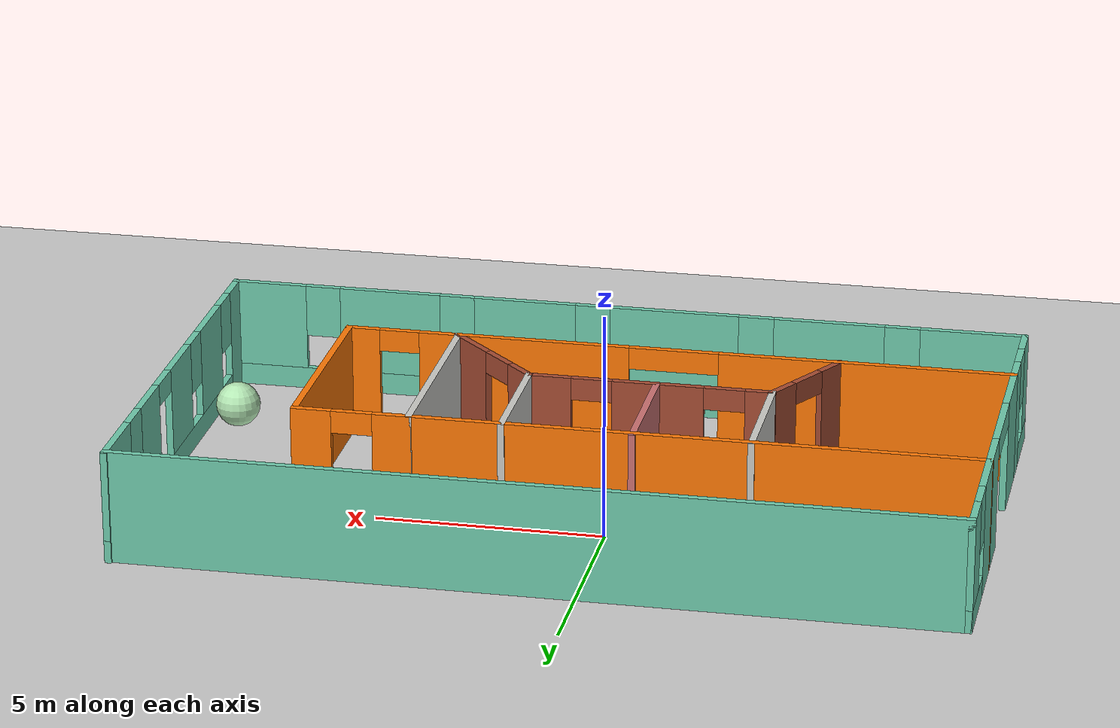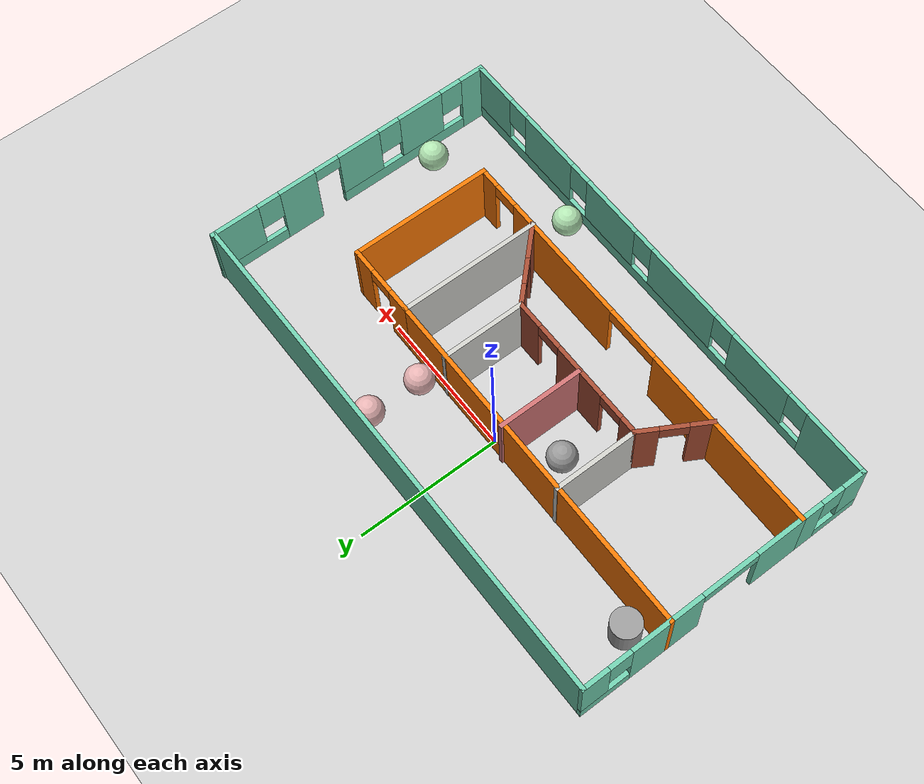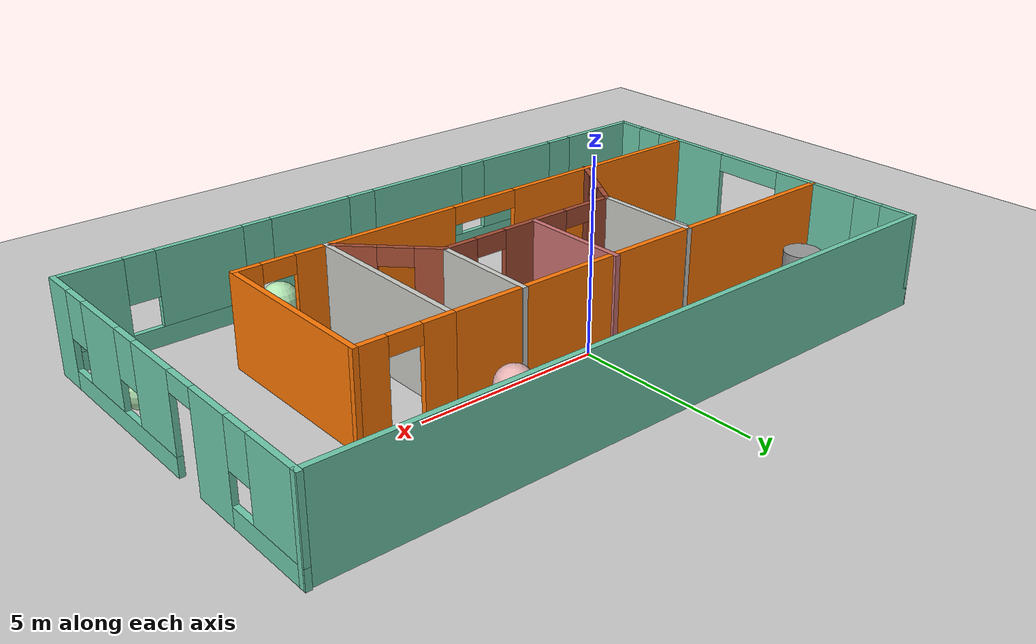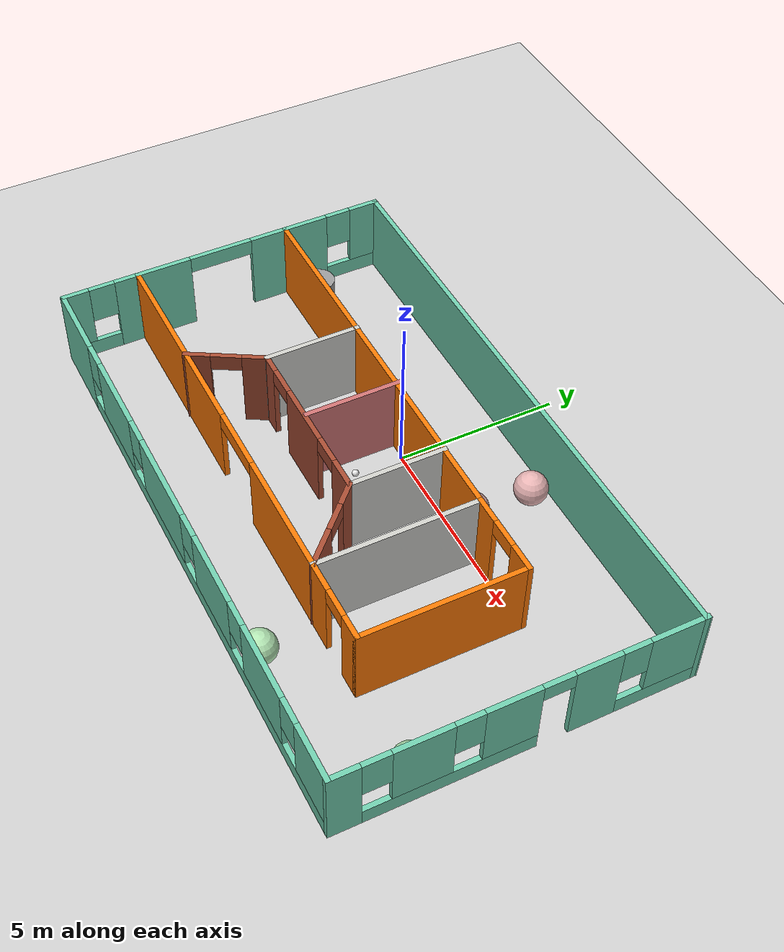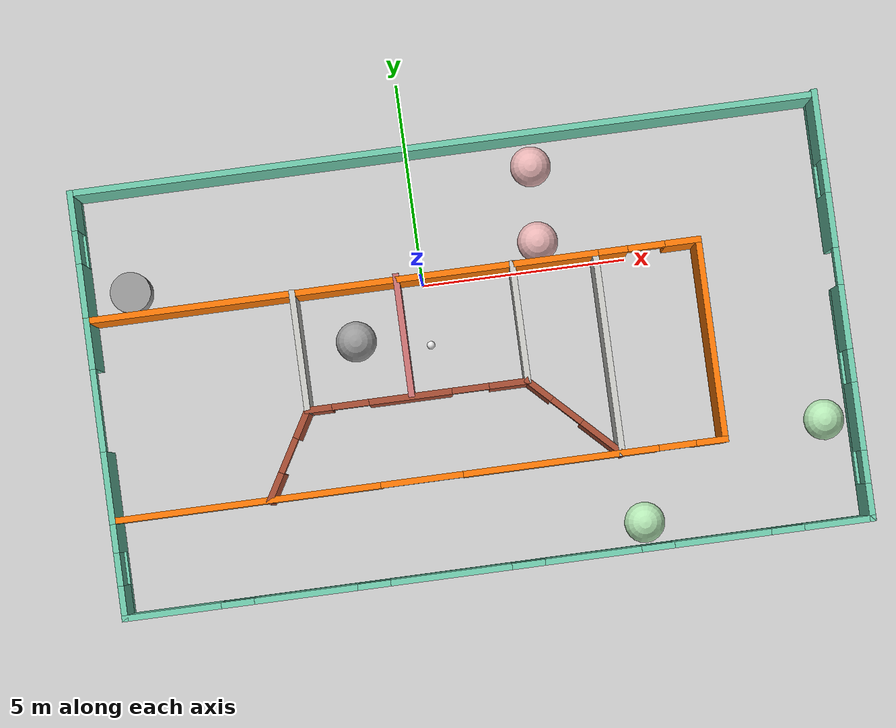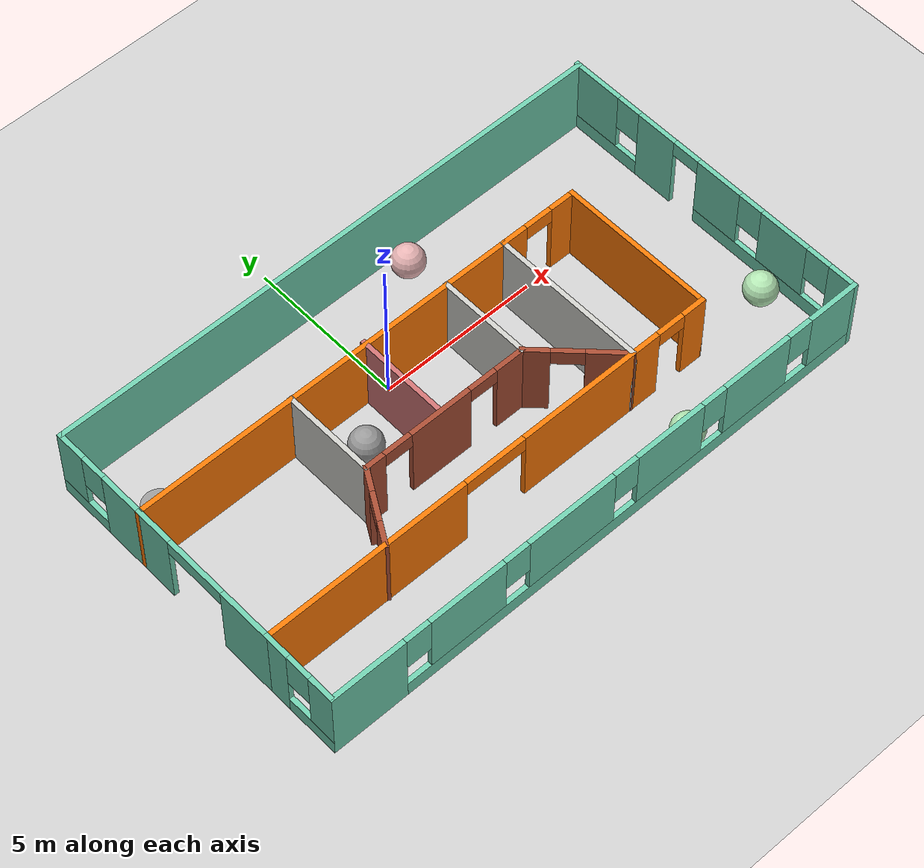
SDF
<sdf version="1.6">
 <world name="default">
  <model name="ground_plane">
   <static>1</static>
   <link name="link">
    <collision name="collision">
     <geometry><plane><normal>0 0 1</normal><size>100 100</size></plane></geometry>
     <surface>
      <contact><collide_bitmask>65535</collide_bitmask></contact>
      <friction><ode><mu>100</mu><mu2>50</mu2></ode></friction>
     </surface>
    </collision>
    <visual name="visual">
     <cast_shadows>0</cast_shadows>
     <geometry><plane><normal>0 0 1</normal><size>100 100</size></plane></geometry>
     <material>
      <script><uri>file://media/materials/scripts/gazebo.material</uri><name>Gazebo/Grey</name></script>
     </material>
    </visual>
   </link>
  </model>
  <model name="modelUdacityOffice">
   <pose>0.92 -1.915 0 0 -0 0</pose>
   <link name="Wall_0">
    <collision name="Wall_0_Collision">
     <geometry><box><size>12.5 0.15 2.5</size></box></geometry>
     <pose>0 0 1.25 0 -0 0</pose>
    </collision>
    <visual name="Wall_0_Visual">
     <pose>0 0 1.25 0 -0 0</pose>
     <geometry><box><size>12.5 0.15 2.5</size></box></geometry>
     <material>
      <script><uri>file://media/materials/scripts/gazebo.material</uri><name>Gazebo/Grey</name></script>
      <ambient>0.996078 0.47451 0.0196078 1</ambient>
     </material>
     <meta><layer>0</layer></meta>
    </visual>
    <pose>-2.875 2.025 0 0 -0 3.14159</pose>
   </link>
   <link name="Wall_1">
    <pose>-9.05 -0.4 0 0 -0 -1.5708</pose>
    <visual name="Wall_1_Visual_0">
     <pose>-1.87607 0 1.25 0 -0 0</pose>
     <geometry><box><size>1.24786 0.15 2.5</size></box></geometry>
     <material>
      <script><uri>file://media/materials/scripts/gazebo.material</uri><name>Gazebo/Grey</name></script>
      <ambient>0.435294 0.796078 0.67451 1</ambient>
     </material>
     <meta><layer>0</layer></meta>
    </visual>
    <collision name="Wall_1_Collision_0">
     <geometry><box><size>1.24786 0.15 2.5</size></box></geometry>
     <pose>-1.87607 0 1.25 0 -0 0</pose>
    </collision>
    <visual name="Wall_1_Visual_1">
     <pose>1.62393 0 1.25 0 -0 0</pose>
     <geometry><box><size>1.75214 0.15 2.5</size></box></geometry>
     <material>
      <script><uri>file://media/materials/scripts/gazebo.material</uri><name>Gazebo/Grey</name></script>
      <ambient>0.435294 0.796078 0.67451 1</ambient>
     </material>
     <meta><layer>0</layer></meta>
    </visual>
    <collision name="Wall_1_Collision_1">
     <geometry><box><size>1.75214 0.15 2.5</size></box></geometry>
     <pose>1.62393 0 1.25 0 -0 0</pose>
    </collision>
    <visual name="Wall_1_Visual_2">
     <pose>-0.252138 0 2.25 0 -0 0</pose>
     <geometry><box><size>2 0.15 0.5</size></box></geometry>
     <material>
      <script><uri>file://media/materials/scripts/gazebo.material</uri><name>Gazebo/Grey</name></script>
      <ambient>0.435294 0.796078 0.67451 1</ambient>
     </material>
     <meta><layer>0</layer></meta>
    </visual>
    <collision name="Wall_1_Collision_2">
     <geometry><box><size>2 0.15 0.5</size></box></geometry>
     <pose>-0.252138 0 2.25 0 -0 0</pose>
    </collision>
   </link>
   <link name="Wall_10">
    <collision name="Wall_10_Collision">
     <geometry><box><size>3 0.15 2.5</size></box></geometry>
     <pose>0 0 1.25 0 -0 0</pose>
    </collision>
    <visual name="Wall_10_Visual">
     <pose>0 0 1.25 0 -0 0</pose>
     <geometry><box><size>3 0.15 2.5</size></box></geometry>
     <material>
      <script><uri>file://media/materials/scripts/gazebo.material</uri><name>Gazebo/CeilingTiled</name></script>
      <ambient>1 1 1 1</ambient>
     </material>
     <meta><layer>0</layer></meta>
    </visual>
    <pose>-4.06525 0.615254 0 0 -0 1.5708</pose>
   </link>
   <link name="Wall_12">
    <collision name="Wall_12_Collision">
     <geometry><box><size>3 0.15 2.5</size></box></geometry>
     <pose>0 0 1.25 0 -0 0</pose>
    </collision>
    <visual name="Wall_12_Visual">
     <pose>0 0 1.25 0 -0 0</pose>
     <geometry><box><size>3 0.15 2.5</size></box></geometry>
     <material>
      <script><uri>file://media/materials/scripts/gazebo.material</uri><name>Gazebo/CeilingTiled</name></script>
      <ambient>0.8 0.447059 0.447059 1</ambient>
     </material>
     <meta><layer>0</layer></meta>
    </visual>
    <pose>1.28475 0.615254 0 0 -0 1.5708</pose>
   </link>
   <link name="Wall_18">
    <pose>-9.05 -4 0 0 -0 -1.5708</pose>
    <visual name="Wall_18_Visual_0">
     <pose>-0.830223 0 1.25 0 -0 0</pose>
     <geometry><box><size>0.839555 0.15 2.5</size></box></geometry>
     <material>
      <script><uri>file://media/materials/scripts/gazebo.material</uri><name>Gazebo/Grey</name></script>
      <ambient>0.435294 0.796078 0.67451 1</ambient>
     </material>
     <meta><layer>0</layer></meta>
    </visual>
    <collision name="Wall_18_Collision_0">
     <geometry><box><size>0.839555 0.15 2.5</size></box></geometry>
     <pose>-0.830223 0 1.25 0 -0 0</pose>
    </collision>
    <visual name="Wall_18_Visual_1">
     <pose>0.419777 0 0.25 0 -0 0</pose>
     <geometry><box><size>1.66044 0.15 0.5</size></box></geometry>
     <material>
      <script><uri>file://media/materials/scripts/gazebo.material</uri><name>Gazebo/Grey</name></script>
      <ambient>0.435294 0.796078 0.67451 1</ambient>
     </material>
     <meta><layer>0</layer></meta>
    </visual>
    <collision name="Wall_18_Collision_1">
     <geometry><box><size>1.66044 0.15 0.5</size></box></geometry>
     <pose>0.419777 0 0.25 0 -0 0</pose>
    </collision>
    <visual name="Wall_18_Visual_2">
     <pose>0.819777 0 1.5 0 -0 0</pose>
     <geometry><box><size>0.860445 0.15 2</size></box></geometry>
     <material>
      <script><uri>file://media/materials/scripts/gazebo.material</uri><name>Gazebo/Grey</name></script>
      <ambient>0.435294 0.796078 0.67451 1</ambient>
     </material>
     <meta><layer>0</layer></meta>
    </visual>
    <collision name="Wall_18_Collision_2">
     <geometry><box><size>0.860445 0.15 2</size></box></geometry>
     <pose>0.819777 0 1.5 0 -0 0</pose>
    </collision>
    <visual name="Wall_18_Visual_3">
     <pose>-0.010445 0 1.9 0 -0 0</pose>
     <geometry><box><size>0.8 0.15 1.2</size></box></geometry>
     <material>
      <script><uri>file://media/materials/scripts/gazebo.material</uri><name>Gazebo/Grey</name></script>
      <ambient>0.435294 0.796078 0.67451 1</ambient>
     </material>
     <meta><layer>0</layer></meta>
    </visual>
    <collision name="Wall_18_Collision_3">
     <geometry><box><size>0.8 0.15 1.2</size></box></geometry>
     <pose>-0.010445 0 1.9 0 -0 0</pose>
    </collision>
   </link>
   <link name="Wall_19">
    <pose>-0 -5.175 0 0 -0 0</pose>
    <visual name="Wall_19_Visual_0">
     <pose>-7.92331 0 1.25 0 -0 0</pose>
     <geometry><box><size>2.40337 0.15 2.5</size></box></geometry>
     <material>
      <script><uri>file://media/materials/scripts/gazebo.material</uri><name>Gazebo/Grey</name></script>
      <ambient>0.435294 0.796078 0.67451 1</ambient>
     </material>
     <meta><layer>0</layer></meta>
    </visual>
    <collision name="Wall_19_Collision_0">
     <geometry><box><size>2.40337 0.15 2.5</size></box></geometry>
     <pose>-7.92331 0 1.25 0 -0 0</pose>
    </collision>
    <visual name="Wall_19_Visual_1">
     <pose>1.20168 0 0.25 0 -0 0</pose>
     <geometry><box><size>15.8466 0.15 0.5</size></box></geometry>
     <material>
      <script><uri>file://media/materials/scripts/gazebo.material</uri><name>Gazebo/Grey</name></script>
      <ambient>0.435294 0.796078 0.67451 1</ambient>
     </material>
     <meta><layer>0</layer></meta>
    </visual>
    <collision name="Wall_19_Collision_1">
     <geometry><box><size>15.8466 0.15 0.5</size></box></geometry>
     <pose>1.20168 0 0.25 0 -0 0</pose>
    </collision>
    <visual name="Wall_19_Visual_2">
     <pose>-4.67232 0 1.5 0 -0 0</pose>
     <geometry><box><size>2.49863 0.15 2</size></box></geometry>
     <material>
      <script><uri>file://media/materials/scripts/gazebo.material</uri><name>Gazebo/Grey</name></script>
      <ambient>0.435294 0.796078 0.67451 1</ambient>
     </material>
     <meta><layer>0</layer></meta>
    </visual>
    <collision name="Wall_19_Collision_2">
     <geometry><box><size>2.49863 0.15 2</size></box></geometry>
     <pose>-4.67232 0 1.5 0 -0 0</pose>
    </collision>
    <visual name="Wall_19_Visual_3">
     <pose>-1.15244 0 1.5 0 -0 0</pose>
     <geometry><box><size>2.94112 0.15 2</size></box></geometry>
     <material>
      <script><uri>file://media/materials/scripts/gazebo.material</uri><name>Gazebo/Grey</name></script>
      <ambient>0.435294 0.796078 0.67451 1</ambient>
     </material>
     <meta><layer>0</layer></meta>
    </visual>
    <collision name="Wall_19_Collision_3">
     <geometry><box><size>2.94112 0.15 2</size></box></geometry>
     <pose>-1.15244 0 1.5 0 -0 0</pose>
    </collision>
    <visual name="Wall_19_Visual_4">
     <pose>2.28698 0 1.5 0 -0 0</pose>
     <geometry><box><size>2.33772 0.15 2</size></box></geometry>
     <material>
      <script><uri>file://media/materials/scripts/gazebo.material</uri><name>Gazebo/Grey</name></script>
      <ambient>0.435294 0.796078 0.67451 1</ambient>
     </material>
     <meta><layer>0</layer></meta>
    </visual>
    <collision name="Wall_19_Collision_4">
     <geometry><box><size>2.33772 0.15 2</size></box></geometry>
     <pose>2.28698 0 1.5 0 -0 0</pose>
    </collision>
    <visual name="Wall_19_Visual_5">
     <pose>5.4247 0 1.5 0 -0 0</pose>
     <geometry><box><size>2.33772 0.15 2</size></box></geometry>
     <material>
      <script><uri>file://media/materials/scripts/gazebo.material</uri><name>Gazebo/Grey</name></script>
      <ambient>0.435294 0.796078 0.67451 1</ambient>
     </material>
     <meta><layer>0</layer></meta>
    </visual>
    <collision name="Wall_19_Collision_5">
     <geometry><box><size>2.33772 0.15 2</size></box></geometry>
     <pose>5.4247 0 1.5 0 -0 0</pose>
    </collision>
    <visual name="Wall_19_Visual_6">
     <pose>8.25928 0 1.5 0 -0 0</pose>
     <geometry><box><size>1.73144 0.15 2</size></box></geometry>
     <material>
      <script><uri>file://media/materials/scripts/gazebo.material</uri><name>Gazebo/Grey</name></script>
      <ambient>0.435294 0.796078 0.67451 1</ambient>
     </material>
     <meta><layer>0</layer></meta>
    </visual>
    <collision name="Wall_19_Collision_6">
     <geometry><box><size>1.73144 0.15 2</size></box></geometry>
     <pose>8.25928 0 1.5 0 -0 0</pose>
    </collision>
    <visual name="Wall_19_Visual_7">
     <pose>-6.32163 0 1.9 0 -0 0</pose>
     <geometry><box><size>0.8 0.15 1.2</size></box></geometry>
     <material>
      <script><uri>file://media/materials/scripts/gazebo.material</uri><name>Gazebo/Grey</name></script>
      <ambient>0.435294 0.796078 0.67451 1</ambient>
     </material>
     <meta><layer>0</layer></meta>
    </visual>
    <collision name="Wall_19_Collision_7">
     <geometry><box><size>0.8 0.15 1.2</size></box></geometry>
     <pose>-6.32163 0 1.9 0 -0 0</pose>
    </collision>
    <visual name="Wall_19_Visual_8">
     <pose>-3.023 0 1.9 0 -0 0</pose>
     <geometry><box><size>0.8 0.15 1.2</size></box></geometry>
     <material>
      <script><uri>file://media/materials/scripts/gazebo.material</uri><name>Gazebo/Grey</name></script>
      <ambient>0.435294 0.796078 0.67451 1</ambient>
     </material>
     <meta><layer>0</layer></meta>
    </visual>
    <collision name="Wall_19_Collision_8">
     <geometry><box><size>0.8 0.15 1.2</size></box></geometry>
     <pose>-3.023 0 1.9 0 -0 0</pose>
    </collision>
    <visual name="Wall_19_Visual_9">
     <pose>0.71812 0 1.9 0 -0 0</pose>
     <geometry><box><size>0.8 0.15 1.2</size></box></geometry>
     <material>
      <script><uri>file://media/materials/scripts/gazebo.material</uri><name>Gazebo/Grey</name></script>
      <ambient>0.435294 0.796078 0.67451 1</ambient>
     </material>
     <meta><layer>0</layer></meta>
    </visual>
    <collision name="Wall_19_Collision_9">
     <geometry><box><size>0.8 0.15 1.2</size></box></geometry>
     <pose>0.71812 0 1.9 0 -0 0</pose>
    </collision>
    <visual name="Wall_19_Visual_10">
     <pose>3.85584 0 1.9 0 -0 0</pose>
     <geometry><box><size>0.8 0.15 1.2</size></box></geometry>
     <material>
      <script><uri>file://media/materials/scripts/gazebo.material</uri><name>Gazebo/Grey</name></script>
      <ambient>0.435294 0.796078 0.67451 1</ambient>
     </material>
     <meta><layer>0</layer></meta>
    </visual>
    <collision name="Wall_19_Collision_10">
     <geometry><box><size>0.8 0.15 1.2</size></box></geometry>
     <pose>3.85584 0 1.9 0 -0 0</pose>
    </collision>
    <visual name="Wall_19_Visual_11">
     <pose>6.99355 0 1.9 0 -0 0</pose>
     <geometry><box><size>0.8 0.15 1.2</size></box></geometry>
     <material>
      <script><uri>file://media/materials/scripts/gazebo.material</uri><name>Gazebo/Grey</name></script>
      <ambient>0.435294 0.796078 0.67451 1</ambient>
     </material>
     <meta><layer>0</layer></meta>
    </visual>
    <collision name="Wall_19_Collision_11">
     <geometry><box><size>0.8 0.15 1.2</size></box></geometry>
     <pose>6.99355 0 1.9 0 -0 0</pose>
    </collision>
   </link>
   <link name="Wall_2">
    <pose>-1.625 -2.825 0 0 -0 0</pose>
    <visual name="Wall_2_Visual_0">
     <pose>-4.21486 0 1.25 0 -0 0</pose>
     <geometry><box><size>6.57029 0.15 2.5</size></box></geometry>
     <material>
      <script><uri>file://media/materials/scripts/gazebo.material</uri><name>Gazebo/Grey</name></script>
      <ambient>0.996078 0.47451 0.0196078 1</ambient>
     </material>
     <meta><layer>0</layer></meta>
    </visual>
    <collision name="Wall_2_Collision_0">
     <geometry><box><size>6.57029 0.15 2.5</size></box></geometry>
     <pose>-4.21486 0 1.25 0 -0 0</pose>
    </collision>
    <visual name="Wall_2_Visual_1">
     <pose>3.44278 0 1.25 0 -0 0</pose>
     <geometry><box><size>4.74498 0.15 2.5</size></box></geometry>
     <material>
      <script><uri>file://media/materials/scripts/gazebo.material</uri><name>Gazebo/Grey</name></script>
      <ambient>0.996078 0.47451 0.0196078 1</ambient>
     </material>
     <meta><layer>0</layer></meta>
    </visual>
    <collision name="Wall_2_Collision_1">
     <geometry><box><size>4.74498 0.15 2.5</size></box></geometry>
     <pose>3.44278 0 1.25 0 -0 0</pose>
    </collision>
    <visual name="Wall_2_Visual_2">
     <pose>7.10763 0 1.25 0 -0 0</pose>
     <geometry><box><size>0.784733 0.15 2.5</size></box></geometry>
     <material>
      <script><uri>file://media/materials/scripts/gazebo.material</uri><name>Gazebo/Grey</name></script>
      <ambient>0.996078 0.47451 0.0196078 1</ambient>
     </material>
     <meta><layer>0</layer></meta>
    </visual>
    <collision name="Wall_2_Collision_2">
     <geometry><box><size>0.784733 0.15 2.5</size></box></geometry>
     <pose>7.10763 0 1.25 0 -0 0</pose>
    </collision>
    <visual name="Wall_2_Visual_3">
     <pose>0.070287 0 2.25 0 -0 0</pose>
     <geometry><box><size>2 0.15 0.5</size></box></geometry>
     <material>
      <script><uri>file://media/materials/scripts/gazebo.material</uri><name>Gazebo/Grey</name></script>
      <ambient>0.996078 0.47451 0.0196078 1</ambient>
     </material>
     <meta><layer>0</layer></meta>
    </visual>
    <collision name="Wall_2_Collision_3">
     <geometry><box><size>2 0.15 0.5</size></box></geometry>
     <pose>0.070287 0 2.25 0 -0 0</pose>
    </collision>
    <visual name="Wall_2_Visual_4">
     <pose>6.26527 0 2.25 0 -0 0</pose>
     <geometry><box><size>0.9 0.15 0.5</size></box></geometry>
     <material>
      <script><uri>file://media/materials/scripts/gazebo.material</uri><name>Gazebo/Grey</name></script>
      <ambient>0.996078 0.47451 0.0196078 1</ambient>
     </material>
     <meta><layer>0</layer></meta>
    </visual>
    <collision name="Wall_2_Collision_4">
     <geometry><box><size>0.9 0.15 0.5</size></box></geometry>
     <pose>6.26527 0 2.25 0 -0 0</pose>
    </collision>
   </link>
   <link name="Wall_20">
    <pose>9.05 0 0 0 -0 1.5708</pose>
    <visual name="Wall_20_Visual_0">
     <pose>-4.78961 0 1.25 0 -0 0</pose>
     <geometry><box><size>0.920786 0.15 2.5</size></box></geometry>
     <material>
      <script><uri>file://media/materials/scripts/gazebo.material</uri><name>Gazebo/Grey</name></script>
      <ambient>0.435294 0.796078 0.67451 1</ambient>
     </material>
     <meta><layer>0</layer></meta>
    </visual>
    <collision name="Wall_20_Collision_0">
     <geometry><box><size>0.920786 0.15 2.5</size></box></geometry>
     <pose>-4.78961 0 1.25 0 -0 0</pose>
    </collision>
    <visual name="Wall_20_Visual_1">
     <pose>2.05946 0 1.25 0 -0 0</pose>
     <geometry><box><size>1.34238 0.15 2.5</size></box></geometry>
     <material>
      <script><uri>file://media/materials/scripts/gazebo.material</uri><name>Gazebo/Grey</name></script>
      <ambient>0.435294 0.796078 0.67451 1</ambient>
     </material>
     <meta><layer>0</layer></meta>
    </visual>
    <collision name="Wall_20_Collision_1">
     <geometry><box><size>1.34238 0.15 2.5</size></box></geometry>
     <pose>2.05946 0 1.25 0 -0 0</pose>
    </collision>
    <visual name="Wall_20_Visual_2">
     <pose>-1.92047 0 0.25 0 -0 0</pose>
     <geometry><box><size>4.81748 0.15 0.5</size></box></geometry>
     <material>
      <script><uri>file://media/materials/scripts/gazebo.material</uri><name>Gazebo/Grey</name></script>
      <ambient>0.435294 0.796078 0.67451 1</ambient>
     </material>
     <meta><layer>0</layer></meta>
    </visual>
    <collision name="Wall_20_Collision_2">
     <geometry><box><size>4.81748 0.15 0.5</size></box></geometry>
     <pose>-1.92047 0 0.25 0 -0 0</pose>
    </collision>
    <visual name="Wall_20_Visual_3">
     <pose>3.99032 0 0.25 0 -0 0</pose>
     <geometry><box><size>2.51935 0.15 0.5</size></box></geometry>
     <material>
      <script><uri>file://media/materials/scripts/gazebo.material</uri><name>Gazebo/Grey</name></script>
      <ambient>0.435294 0.796078 0.67451 1</ambient>
     </material>
     <meta><layer>0</layer></meta>
    </visual>
    <collision name="Wall_20_Collision_3">
     <geometry><box><size>2.51935 0.15 0.5</size></box></geometry>
     <pose>3.99032 0 0.25 0 -0 0</pose>
    </collision>
    <visual name="Wall_20_Visual_4">
     <pose>-2.70229 0 1.5 0 -0 0</pose>
     <geometry><box><size>1.65386 0.15 2</size></box></geometry>
     <material>
      <script><uri>file://media/materials/scripts/gazebo.material</uri><name>Gazebo/Grey</name></script>
      <ambient>0.435294 0.796078 0.67451 1</ambient>
     </material>
     <meta><layer>0</layer></meta>
    </visual>
    <collision name="Wall_20_Collision_4">
     <geometry><box><size>1.65386 0.15 2</size></box></geometry>
     <pose>-2.70229 0 1.5 0 -0 0</pose>
    </collision>
    <visual name="Wall_20_Visual_5">
     <pose>-0.293544 0 1.5 0 -0 0</pose>
     <geometry><box><size>1.56363 0.15 2</size></box></geometry>
     <material>
      <script><uri>file://media/materials/scripts/gazebo.material</uri><name>Gazebo/Grey</name></script>
      <ambient>0.435294 0.796078 0.67451 1</ambient>
     </material>
     <meta><layer>0</layer></meta>
    </visual>
    <collision name="Wall_20_Collision_5">
     <geometry><box><size>1.56363 0.15 2</size></box></geometry>
     <pose>-0.293544 0 1.5 0 -0 0</pose>
    </collision>
    <visual name="Wall_20_Visual_6">
     <pose>-0.293544 0 1.5 0 -0 0</pose>
     <geometry><box><size>1.56363 0.15 2</size></box></geometry>
     <material>
      <script><uri>file://media/materials/scripts/gazebo.material</uri><name>Gazebo/Grey</name></script>
      <ambient>0.435294 0.796078 0.67451 1</ambient>
     </material>
     <meta><layer>0</layer></meta>
    </visual>
    <collision name="Wall_20_Collision_6">
     <geometry><box><size>1.56363 0.15 2</size></box></geometry>
     <pose>-0.293544 0 1.5 0 -0 0</pose>
    </collision>
    <visual name="Wall_20_Visual_7">
     <pose>4.39032 0 1.5 0 -0 0</pose>
     <geometry><box><size>1.71935 0.15 2</size></box></geometry>
     <material>
      <script><uri>file://media/materials/scripts/gazebo.material</uri><name>Gazebo/Grey</name></script>
      <ambient>0.435294 0.796078 0.67451 1</ambient>
     </material>
     <meta><layer>0</layer></meta>
    </visual>
    <collision name="Wall_20_Collision_7">
     <geometry><box><size>1.71935 0.15 2</size></box></geometry>
     <pose>4.39032 0 1.5 0 -0 0</pose>
    </collision>
    <visual name="Wall_20_Visual_8">
     <pose>-3.92921 0 1.9 0 -0 0</pose>
     <geometry><box><size>0.8 0.15 1.2</size></box></geometry>
     <material>
      <script><uri>file://media/materials/scripts/gazebo.material</uri><name>Gazebo/Grey</name></script>
      <ambient>0.435294 0.796078 0.67451 1</ambient>
     </material>
     <meta><layer>0</layer></meta>
    </visual>
    <collision name="Wall_20_Collision_8">
     <geometry><box><size>0.8 0.15 1.2</size></box></geometry>
     <pose>-3.92921 0 1.9 0 -0 0</pose>
    </collision>
    <visual name="Wall_20_Visual_9">
     <pose>3.13065 0 1.9 0 -0 0</pose>
     <geometry><box><size>0.8 0.15 1.2</size></box></geometry>
     <material>
      <script><uri>file://media/materials/scripts/gazebo.material</uri><name>Gazebo/Grey</name></script>
      <ambient>0.435294 0.796078 0.67451 1</ambient>
     </material>
     <meta><layer>0</layer></meta>
    </visual>
    <collision name="Wall_20_Collision_9">
     <geometry><box><size>0.8 0.15 1.2</size></box></geometry>
     <pose>3.13065 0 1.9 0 -0 0</pose>
    </collision>
    <visual name="Wall_20_Visual_10">
     <pose>-1.47536 0 1.9 0 -0 0</pose>
     <geometry><box><size>0.8 0.15 1.2</size></box></geometry>
     <material>
      <script><uri>file://media/materials/scripts/gazebo.material</uri><name>Gazebo/Grey</name></script>
      <ambient>0.435294 0.796078 0.67451 1</ambient>
     </material>
     <meta><layer>0</layer></meta>
    </visual>
    <collision name="Wall_20_Collision_10">
     <geometry><box><size>0.8 0.15 1.2</size></box></geometry>
     <pose>-1.47536 0 1.9 0 -0 0</pose>
    </collision>
    <visual name="Wall_20_Visual_11">
     <pose>0.93827 0 2.25 0 -0 0</pose>
     <geometry><box><size>0.9 0.15 0.5</size></box></geometry>
     <material>
      <script><uri>file://media/materials/scripts/gazebo.material</uri><name>Gazebo/Grey</name></script>
      <ambient>0.435294 0.796078 0.67451 1</ambient>
     </material>
     <meta><layer>0</layer></meta>
    </visual>
    <collision name="Wall_20_Collision_11">
     <geometry><box><size>0.9 0.15 0.5</size></box></geometry>
     <pose>0.93827 0 2.25 0 -0 0</pose>
    </collision>
    <visual name="Wall_20_Visual_12">
     <pose>0.93827 0 2.25 0 -0 0</pose>
     <geometry><box><size>0.9 0.15 0.5</size></box></geometry>
     <material>
      <script><uri>file://media/materials/scripts/gazebo.material</uri><name>Gazebo/Grey</name></script>
      <ambient>0.435294 0.796078 0.67451 1</ambient>
     </material>
     <meta><layer>0</layer></meta>
    </visual>
    <collision name="Wall_20_Collision_12">
     <geometry><box><size>0.9 0.15 0.5</size></box></geometry>
     <pose>0.93827 0 2.25 0 -0 0</pose>
    </collision>
   </link>
   <link name="Wall_24">
    <pose>-9.05 3.575 0 0 -0 1.5708</pose>
    <visual name="Wall_24_Visual_0">
     <pose>-0.892744 0 1.25 0 -0 0</pose>
     <geometry><box><size>1.46451 0.15 2.5</size></box></geometry>
     <material>
      <script><uri>file://media/materials/scripts/gazebo.material</uri><name>Gazebo/Grey</name></script>
      <ambient>0.435294 0.796078 0.67451 1</ambient>
     </material>
     <meta><layer>0</layer></meta>
    </visual>
    <collision name="Wall_24_Collision_0">
     <geometry><box><size>1.46451 0.15 2.5</size></box></geometry>
     <pose>-0.892744 0 1.25 0 -0 0</pose>
    </collision>
    <visual name="Wall_24_Visual_1">
     <pose>0.732256 0 0.25 0 -0 0</pose>
     <geometry><box><size>1.78549 0.15 0.5</size></box></geometry>
     <material>
      <script><uri>file://media/materials/scripts/gazebo.material</uri><name>Gazebo/Grey</name></script>
      <ambient>0.435294 0.796078 0.67451 1</ambient>
     </material>
     <meta><layer>0</layer></meta>
    </visual>
    <collision name="Wall_24_Collision_1">
     <geometry><box><size>1.78549 0.15 0.5</size></box></geometry>
     <pose>0.732256 0 0.25 0 -0 0</pose>
    </collision>
    <visual name="Wall_24_Visual_2">
     <pose>1.13226 0 1.5 0 -0 0</pose>
     <geometry><box><size>0.985489 0.15 2</size></box></geometry>
     <material>
      <script><uri>file://media/materials/scripts/gazebo.material</uri><name>Gazebo/Grey</name></script>
      <ambient>0.435294 0.796078 0.67451 1</ambient>
     </material>
     <meta><layer>0</layer></meta>
    </visual>
    <collision name="Wall_24_Collision_2">
     <geometry><box><size>0.985489 0.15 2</size></box></geometry>
     <pose>1.13226 0 1.5 0 -0 0</pose>
    </collision>
    <visual name="Wall_24_Visual_3">
     <pose>0.239511 0 1.9 0 -0 0</pose>
     <geometry><box><size>0.8 0.15 1.2</size></box></geometry>
     <material>
      <script><uri>file://media/materials/scripts/gazebo.material</uri><name>Gazebo/Grey</name></script>
      <ambient>0.435294 0.796078 0.67451 1</ambient>
     </material>
     <meta><layer>0</layer></meta>
    </visual>
    <collision name="Wall_24_Collision_3">
     <geometry><box><size>0.8 0.15 1.2</size></box></geometry>
     <pose>0.239511 0 1.9 0 -0 0</pose>
    </collision>
   </link>
   <link name="Wall_25">
    <collision name="Wall_25_Collision">
     <geometry><box><size>18.25 0.15 2.5</size></box></geometry>
     <pose>0 0 1.25 0 -0 0</pose>
    </collision>
    <visual name="Wall_25_Visual">
     <pose>0 0 1.25 0 -0 0</pose>
     <geometry><box><size>18.25 0.15 2.5</size></box></geometry>
     <material>
      <script><uri>file://media/materials/scripts/gazebo.material</uri><name>Gazebo/Grey</name></script>
      <ambient>0.435294 0.796078 0.67451 1</ambient>
     </material>
     <meta><layer>0</layer></meta>
    </visual>
    <pose>-0 5.125 0 0 -0 0</pose>
   </link>
   <link name="Wall_27">
    <collision name="Wall_27_Collision">
     <geometry><box><size>3 0.15 2.5</size></box></geometry>
     <pose>0 0 1.25 0 -0 0</pose>
    </collision>
    <visual name="Wall_27_Visual">
     <pose>0 0 1.25 0 -0 0</pose>
     <geometry><box><size>3 0.15 2.5</size></box></geometry>
     <material>
      <script><uri>file://media/materials/scripts/gazebo.material</uri><name>Gazebo/Grey</name></script>
      <ambient>0.8 0.447059 0.447059 1</ambient>
     </material>
     <meta><layer>0</layer></meta>
    </visual>
    <pose>-1.5346 0.67373 0 0 -0 1.5708</pose>
   </link>
   <link name="Wall_3">
    <collision name="Wall_3_Collision">
     <geometry><box><size>5 0.15 2.5</size></box></geometry>
     <pose>0 0 1.25 0 -0 0</pose>
    </collision>
    <visual name="Wall_3_Visual">
     <pose>0 0 1.25 0 -0 0</pose>
     <geometry><box><size>5 0.15 2.5</size></box></geometry>
     <material>
      <script><uri>file://media/materials/scripts/gazebo.material</uri><name>Gazebo/Grey</name></script>
      <ambient>0.996078 0.47451 0.0196078 1</ambient>
     </material>
     <meta><layer>0</layer></meta>
    </visual>
    <pose>5.8 -0.4 0 0 -0 1.5708</pose>
   </link>
   <link name="Wall_4">
    <pose>4.55 2.025 0 0 -0 3.14159</pose>
    <visual name="Wall_4_Visual_0">
     <pose>-0.88235 0 1.25 0 -0 0</pose>
     <geometry><box><size>0.885301 0.15 2.5</size></box></geometry>
     <material>
      <script><uri>file://media/materials/scripts/gazebo.material</uri><name>Gazebo/Grey</name></script>
      <ambient>0.996078 0.47451 0.0196078 1</ambient>
     </material>
     <meta><layer>0</layer></meta>
    </visual>
    <collision name="Wall_4_Collision_0">
     <geometry><box><size>0.885301 0.15 2.5</size></box></geometry>
     <pose>-0.88235 0 1.25 0 -0 0</pose>
    </collision>
    <visual name="Wall_4_Visual_1">
     <pose>0.89265 0 1.25 0 -0 0</pose>
     <geometry><box><size>0.864699 0.15 2.5</size></box></geometry>
     <material>
      <script><uri>file://media/materials/scripts/gazebo.material</uri><name>Gazebo/Grey</name></script>
      <ambient>0.996078 0.47451 0.0196078 1</ambient>
     </material>
     <meta><layer>0</layer></meta>
    </visual>
    <collision name="Wall_4_Collision_1">
     <geometry><box><size>0.864699 0.15 2.5</size></box></geometry>
     <pose>0.89265 0 1.25 0 -0 0</pose>
    </collision>
    <visual name="Wall_4_Visual_2">
     <pose>0.010301 0 2.25 0 -0 0</pose>
     <geometry><box><size>0.9 0.15 0.5</size></box></geometry>
     <material>
      <script><uri>file://media/materials/scripts/gazebo.material</uri><name>Gazebo/Grey</name></script>
      <ambient>0.996078 0.47451 0.0196078 1</ambient>
     </material>
     <meta><layer>0</layer></meta>
    </visual>
    <collision name="Wall_4_Collision_2">
     <geometry><box><size>0.9 0.15 0.5</size></box></geometry>
     <pose>0.010301 0 2.25 0 -0 0</pose>
    </collision>
   </link>
   <link name="Wall_5">
    <collision name="Wall_5_Collision">
     <geometry><box><size>5 0.15 2.5</size></box></geometry>
     <pose>0 0 1.25 0 -0 0</pose>
    </collision>
    <visual name="Wall_5_Visual">
     <pose>0 0 1.25 0 -0 0</pose>
     <geometry><box><size>5 0.15 2.5</size></box></geometry>
     <material>
      <script><uri>file://media/materials/scripts/gazebo.material</uri><name>Gazebo/CeilingTiled</name></script>
      <ambient>1 1 1 1</ambient>
     </material>
     <meta><layer>0</layer></meta>
    </visual>
    <pose>3.3 -0.4 0 0 -0 -1.5708</pose>
   </link>
   <link name="Wall_6">
    <pose>2.29237 -1.81737 0 0 -0 2.35619</pose>
    <visual name="Wall_6_Visual_0">
     <pose>-0.852173 0 1.25 0 -0 0</pose>
     <geometry><box><size>1.29566 0.15 2.5</size></box></geometry>
     <material>
      <script><uri>file://media/materials/scripts/gazebo.material</uri><name>Gazebo/Bricks</name></script>
      <ambient>1 1 1 1</ambient>
     </material>
     <meta><layer>0</layer></meta>
    </visual>
    <collision name="Wall_6_Collision_0">
     <geometry><box><size>1.29566 0.15 2.5</size></box></geometry>
     <pose>-0.852173 0 1.25 0 -0 0</pose>
    </collision>
    <visual name="Wall_6_Visual_1">
     <pose>1.09783 0 1.25 0 -0 0</pose>
     <geometry><box><size>0.804345 0.15 2.5</size></box></geometry>
     <material>
      <script><uri>file://media/materials/scripts/gazebo.material</uri><name>Gazebo/Bricks</name></script>
      <ambient>1 1 1 1</ambient>
     </material>
     <meta><layer>0</layer></meta>
    </visual>
    <collision name="Wall_6_Collision_1">
     <geometry><box><size>0.804345 0.15 2.5</size></box></geometry>
     <pose>1.09783 0 1.25 0 -0 0</pose>
    </collision>
    <visual name="Wall_6_Visual_2">
     <pose>0.245655 0 2.25 0 -0 0</pose>
     <geometry><box><size>0.9 0.15 0.5</size></box></geometry>
     <material>
      <script><uri>file://media/materials/scripts/gazebo.material</uri><name>Gazebo/Bricks</name></script>
      <ambient>1 1 1 1</ambient>
     </material>
     <meta><layer>0</layer></meta>
    </visual>
    <collision name="Wall_6_Collision_2">
     <geometry><box><size>0.9 0.15 0.5</size></box></geometry>
     <pose>0.245655 0 2.25 0 -0 0</pose>
    </collision>
   </link>
   <link name="Wall_7">
    <pose>-1.39025 -0.809746 0 0 -0 3.14159</pose>
    <visual name="Wall_7_Visual_0">
     <pose>-2.24186 0 1.25 0 -0 0</pose>
     <geometry><box><size>1.01628 0.15 2.5</size></box></geometry>
     <material>
      <script><uri>file://media/materials/scripts/gazebo.material</uri><name>Gazebo/Bricks</name></script>
      <ambient>1 1 1 1</ambient>
     </material>
     <meta><layer>0</layer></meta>
    </visual>
    <collision name="Wall_7_Collision_0">
     <geometry><box><size>1.01628 0.15 2.5</size></box></geometry>
     <pose>-2.24186 0 1.25 0 -0 0</pose>
    </collision>
    <visual name="Wall_7_Visual_1">
     <pose>0.174516 0 1.25 0 -0 0</pose>
     <geometry><box><size>2.01647 0.15 2.5</size></box></geometry>
     <material>
      <script><uri>file://media/materials/scripts/gazebo.material</uri><name>Gazebo/Bricks</name></script>
      <ambient>1 1 1 1</ambient>
     </material>
     <meta><layer>0</layer></meta>
    </visual>
    <collision name="Wall_7_Collision_1">
     <geometry><box><size>2.01647 0.15 2.5</size></box></geometry>
     <pose>0.174516 0 1.25 0 -0 0</pose>
    </collision>
    <visual name="Wall_7_Visual_2">
     <pose>2.41637 0 1.25 0 -0 0</pose>
     <geometry><box><size>0.66725 0.15 2.5</size></box></geometry>
     <material>
      <script><uri>file://media/materials/scripts/gazebo.material</uri><name>Gazebo/Bricks</name></script>
      <ambient>1 1 1 1</ambient>
     </material>
     <meta><layer>0</layer></meta>
    </visual>
    <collision name="Wall_7_Collision_2">
     <geometry><box><size>0.66725 0.15 2.5</size></box></geometry>
     <pose>2.41637 0 1.25 0 -0 0</pose>
    </collision>
    <visual name="Wall_7_Visual_3">
     <pose>-1.28372 0 2.25 0 -0 0</pose>
     <geometry><box><size>0.9 0.15 0.5</size></box></geometry>
     <material>
      <script><uri>file://media/materials/scripts/gazebo.material</uri><name>Gazebo/Bricks</name></script>
      <ambient>1 1 1 1</ambient>
     </material>
     <meta><layer>0</layer></meta>
    </visual>
    <collision name="Wall_7_Collision_3">
     <geometry><box><size>0.9 0.15 0.5</size></box></geometry>
     <pose>-1.28372 0 2.25 0 -0 0</pose>
    </collision>
    <visual name="Wall_7_Visual_4">
     <pose>1.63275 0 2.25 0 -0 0</pose>
     <geometry><box><size>0.9 0.15 0.5</size></box></geometry>
     <material>
      <script><uri>file://media/materials/scripts/gazebo.material</uri><name>Gazebo/Bricks</name></script>
      <ambient>1 1 1 1</ambient>
     </material>
     <meta><layer>0</layer></meta>
    </visual>
    <collision name="Wall_7_Collision_4">
     <geometry><box><size>0.9 0.15 0.5</size></box></geometry>
     <pose>1.63275 0 2.25 0 -0 0</pose>
    </collision>
   </link>
   <link name="Wall_8">
    <pose>-4.65275 -1.82733 0 0 -0 -2.0944</pose>
    <visual name="Wall_8_Visual_0">
     <pose>-0.851164 0 1.25 0 -0 0</pose>
     <geometry><box><size>0.797673 0.15 2.5</size></box></geometry>
     <material>
      <script><uri>file://media/materials/scripts/gazebo.material</uri><name>Gazebo/Bricks</name></script>
      <ambient>1 1 1 1</ambient>
     </material>
     <meta><layer>0</layer></meta>
    </visual>
    <collision name="Wall_8_Collision_0">
     <geometry><box><size>0.797673 0.15 2.5</size></box></geometry>
     <pose>-0.851164 0 1.25 0 -0 0</pose>
    </collision>
    <visual name="Wall_8_Visual_1">
     <pose>0.848836 0 1.25 0 -0 0</pose>
     <geometry><box><size>0.802327 0.15 2.5</size></box></geometry>
     <material>
      <script><uri>file://media/materials/scripts/gazebo.material</uri><name>Gazebo/Bricks</name></script>
      <ambient>1 1 1 1</ambient>
     </material>
     <meta><layer>0</layer></meta>
    </visual>
    <collision name="Wall_8_Collision_1">
     <geometry><box><size>0.802327 0.15 2.5</size></box></geometry>
     <pose>0.848836 0 1.25 0 -0 0</pose>
    </collision>
    <visual name="Wall_8_Visual_2">
     <pose>-0.002327 0 2.25 0 -0 0</pose>
     <geometry><box><size>0.9 0.15 0.5</size></box></geometry>
     <material>
      <script><uri>file://media/materials/scripts/gazebo.material</uri><name>Gazebo/Bricks</name></script>
      <ambient>1 1 1 1</ambient>
     </material>
     <meta><layer>0</layer></meta>
    </visual>
    <collision name="Wall_8_Collision_2">
     <geometry><box><size>0.9 0.15 0.5</size></box></geometry>
     <pose>-0.002327 0 2.25 0 -0 0</pose>
    </collision>
   </link>
   <static>1</static>
  </model>
  <model name="my_ball_clone_12">
   <link name="link">
    <inertial>
     <mass>1</mass>
     <inertia><ixx>0.1</ixx><ixy>0</ixy><ixz>0</ixz><iyy>0.1</iyy><iyz>0</iyz><izz>0.1</izz></inertia>
    </inertial>
    <visual name="visual">
     <geometry><sphere><radius>0.1</radius></sphere></geometry>
     <material>
      <script><name>Gazebo/White</name><uri>file://media/materials/scripts/gazebo.material</uri></script>
      <shader type="pixel"><normal_map>__default__</normal_map></shader>
      <ambient>1 1 1 1</ambient>
      <diffuse>1 1 1 1</diffuse>
      <specular>1 1 1 1</specular>
      <emissive>1 1 1 1</emissive>
     </material>
    </visual>
    <collision name="collision">
     <geometry><sphere><radius>0.1</radius></sphere></geometry>
     <surface>
      <friction>
       <ode><mu>1</mu><mu2>1</mu2><fdir1>0 0 0</fdir1><slip1>0</slip1><slip2>0</slip2></ode>
       <torsional>
        <coefficient>1</coefficient>
        <patch_radius>0</patch_radius>
        <surface_radius>0</surface_radius>
        <use_patch_radius>1</use_patch_radius>
        <ode><slip>0</slip></ode>
       </torsional>
      </friction>
      <bounce><restitution_coefficient>0</restitution_coefficient><threshold>1e+06</threshold></bounce>
      <contact>
       <collide_without_contact>0</collide_without_contact>
       <collide_without_contact_bitmask>1</collide_without_contact_bitmask>
       <collide_bitmask>1</collide_bitmask>
       <ode>
        <soft_cfm>0</soft_cfm>
        <soft_erp>0.2</soft_erp>
        <kp>1e+13</kp>
        <kd>1</kd>
        <max_vel>0.01</max_vel>
        <min_depth>0</min_depth>
       </ode>
       <bullet>
        <split_impulse>1</split_impulse>
        <split_impulse_penetration_threshold>-0.01</split_impulse_penetration_threshold>
        <soft_cfm>0</soft_cfm>
        <soft_erp>0.2</soft_erp>
        <kp>1e+13</kp>
        <kd>1</kd>
       </bullet>
      </contact>
     </surface>
    </collision>
   </link>
   <static>0</static>
   <pose>0 -1.46859 0.1 0 -0 0</pose>
  </model>
  <model name="red_ball">
   <link name="link_4">
    <pose>3.13732 -0.582981 0 0 -0 0</pose>
    <inertial>
     <mass>1</mass>
     <inertia><ixx>0.1</ixx><ixy>0</ixy><ixz>0</ixz><iyy>0.1</iyy><iyz>0</iyz><izz>0.1</izz></inertia>
    </inertial>
    <visual name="visual">
     <geometry><sphere><radius>0.5</radius></sphere></geometry>
     <material>
      <lighting>1</lighting>
      <script><uri>file://media/materials/scripts/gazebo.material</uri><name>Gazebo/Grey</name></script>
      <shader type="pixel"><normal_map>__default__</normal_map></shader>
      <ambient>0.9 0.3 0.3 1</ambient>
      <diffuse>0.9 0.7 0.7 1</diffuse>
      <specular>0.9 0.01 0.01 1</specular>
      <emissive>0.9 0 0 1</emissive>
     </material>
    </visual>
    <collision name="collision">
     <geometry><sphere><radius>0.5</radius></sphere></geometry>
     <surface>
      <friction>
       <ode><mu>1</mu><mu2>1</mu2><fdir1>0 0 0</fdir1><slip1>0</slip1><slip2>0</slip2></ode>
       <torsional>
        <coefficient>1</coefficient>
        <patch_radius>0</patch_radius>
        <surface_radius>0</surface_radius>
        <use_patch_radius>1</use_patch_radius>
        <ode><slip>0</slip></ode>
       </torsional>
      </friction>
      <bounce><restitution_coefficient>0</restitution_coefficient><threshold>1e+06</threshold></bounce>
      <contact>
       <collide_without_contact>0</collide_without_contact>
       <collide_without_contact_bitmask>1</collide_without_contact_bitmask>
       <collide_bitmask>1</collide_bitmask>
       <ode>
        <soft_cfm>0</soft_cfm>
        <soft_erp>0.2</soft_erp>
        <kp>1e+13</kp>
        <kd>1</kd>
        <max_vel>0.01</max_vel>
        <min_depth>0</min_depth>
       </ode>
       <bullet>
        <split_impulse>1</split_impulse>
        <split_impulse_penetration_threshold>-0.01</split_impulse_penetration_threshold>
        <soft_cfm>0</soft_cfm>
        <soft_erp>0.2</soft_erp>
        <kp>1e+13</kp>
        <kd>1</kd>
       </bullet>
      </contact>
     </surface>
    </collision>
   </link>
   <link name="link_4_clone">
    <pose>3.20747 1.27399 0 0 -0 0</pose>
    <inertial>
     <mass>1</mass>
     <inertia><ixx>0.1</ixx><ixy>0</ixy><ixz>0</ixz><iyy>0.1</iyy><iyz>0</iyz><izz>0.1</izz></inertia>
    </inertial>
    <visual name="visual">
     <geometry><sphere><radius>0.5</radius></sphere></geometry>
     <material>
      <lighting>1</lighting>
      <script><uri>file://media/materials/scripts/gazebo.material</uri><name>Gazebo/Grey</name></script>
      <shader type="pixel"><normal_map>__default__</normal_map></shader>
      <ambient>0.9 0.3 0.3 1</ambient>
      <diffuse>0.9 0.7 0.7 1</diffuse>
      <specular>0.9 0.01 0.01 1</specular>
      <emissive>0.9 0 0 1</emissive>
     </material>
    </visual>
    <collision name="collision">
     <geometry><sphere><radius>0.5</radius></sphere></geometry>
     <surface>
      <friction>
       <ode><mu>1</mu><mu2>1</mu2><fdir1>0 0 0</fdir1><slip1>0</slip1><slip2>0</slip2></ode>
       <torsional>
        <coefficient>1</coefficient>
        <patch_radius>0</patch_radius>
        <surface_radius>0</surface_radius>
        <use_patch_radius>1</use_patch_radius>
        <ode><slip>0</slip></ode>
       </torsional>
      </friction>
      <bounce><restitution_coefficient>0</restitution_coefficient><threshold>1e+06</threshold></bounce>
      <contact>
       <collide_without_contact>0</collide_without_contact>
       <collide_without_contact_bitmask>1</collide_without_contact_bitmask>
       <collide_bitmask>1</collide_bitmask>
       <ode>
        <soft_cfm>0</soft_cfm>
        <soft_erp>0.2</soft_erp>
        <kp>1e+13</kp>
        <kd>1</kd>
        <max_vel>0.01</max_vel>
        <min_depth>0</min_depth>
       </ode>
       <bullet>
        <split_impulse>1</split_impulse>
        <split_impulse_penetration_threshold>-0.01</split_impulse_penetration_threshold>
        <soft_cfm>0</soft_cfm>
        <soft_erp>0.2</soft_erp>
        <kp>1e+13</kp>
        <kd>1</kd>
       </bullet>
      </contact>
     </surface>
    </collision>
   </link>
   <link name="link_5">
    <pose>9.50677 -5.83209 0 0 -0 0</pose>
    <inertial>
     <mass>1</mass>
     <inertia><ixx>0.1</ixx><ixy>0</ixy><ixz>0</ixz><iyy>0.1</iyy><iyz>0</iyz><izz>0.1</izz></inertia>
    </inertial>
    <visual name="visual">
     <geometry><sphere><radius>0.5</radius></sphere></geometry>
     <material>
      <lighting>1</lighting>
      <script><uri>file://media/materials/scripts/gazebo.material</uri><name>Gazebo/Grey</name></script>
      <shader type="pixel"><normal_map>__default__</normal_map></shader>
      <ambient>0.3 0.9 0.3 1</ambient>
      <diffuse>0.7 0.9 0.7 1</diffuse>
      <specular>0.01 0.9 0.01 1</specular>
      <emissive>0 0.9 0 1</emissive>
     </material>
    </visual>
    <collision name="collision">
     <geometry><sphere><radius>0.5</radius></sphere></geometry>
     <surface>
      <friction>
       <ode><mu>1</mu><mu2>1</mu2><fdir1>0 0 0</fdir1><slip1>0</slip1><slip2>0</slip2></ode>
       <torsional>
        <coefficient>1</coefficient>
        <patch_radius>0</patch_radius>
        <surface_radius>0</surface_radius>
        <use_patch_radius>1</use_patch_radius>
        <ode><slip>0</slip></ode>
       </torsional>
      </friction>
      <bounce><restitution_coefficient>0</restitution_coefficient><threshold>1e+06</threshold></bounce>
      <contact>
       <collide_without_contact>0</collide_without_contact>
       <collide_without_contact_bitmask>1</collide_without_contact_bitmask>
       <collide_bitmask>1</collide_bitmask>
       <ode>
        <soft_cfm>0</soft_cfm>
        <soft_erp>0.2</soft_erp>
        <kp>1e+13</kp>
        <kd>1</kd>
        <max_vel>0.01</max_vel>
        <min_depth>0</min_depth>
       </ode>
       <bullet>
        <split_impulse>1</split_impulse>
        <split_impulse_penetration_threshold>-0.01</split_impulse_penetration_threshold>
        <soft_cfm>0</soft_cfm>
        <soft_erp>0.2</soft_erp>
        <kp>1e+13</kp>
        <kd>1</kd>
       </bullet>
      </contact>
     </surface>
    </collision>
   </link>
   <link name="link_5_clone">
    <pose>4.81916 -7.74185 0 0 -0 0</pose>
    <inertial>
     <mass>1</mass>
     <inertia><ixx>0.1</ixx><ixy>0</ixy><ixz>0</ixz><iyy>0.1</iyy><iyz>0</iyz><izz>0.1</izz></inertia>
    </inertial>
    <visual name="visual">
     <geometry><sphere><radius>0.5</radius></sphere></geometry>
     <material>
      <lighting>1</lighting>
      <script><uri>file://media/materials/scripts/gazebo.material</uri><name>Gazebo/Grey</name></script>
      <shader type="pixel"><normal_map>__default__</normal_map></shader>
      <ambient>0.3 0.9 0.3 1</ambient>
      <diffuse>0.7 0.9 0.7 1</diffuse>
      <specular>0.01 0.9 0.01 1</specular>
      <emissive>0 0.9 0 1</emissive>
     </material>
    </visual>
    <collision name="collision">
     <geometry><sphere><radius>0.5</radius></sphere></geometry>
     <surface>
      <friction>
       <ode><mu>1</mu><mu2>1</mu2><fdir1>0 0 0</fdir1><slip1>0</slip1><slip2>0</slip2></ode>
       <torsional>
        <coefficient>1</coefficient>
        <patch_radius>0</patch_radius>
        <surface_radius>0</surface_radius>
        <use_patch_radius>1</use_patch_radius>
        <ode><slip>0</slip></ode>
       </torsional>
      </friction>
      <bounce><restitution_coefficient>0</restitution_coefficient><threshold>1e+06</threshold></bounce>
      <contact>
       <collide_without_contact>0</collide_without_contact>
       <collide_without_contact_bitmask>1</collide_without_contact_bitmask>
       <collide_bitmask>1</collide_bitmask>
       <ode>
        <soft_cfm>0</soft_cfm>
        <soft_erp>0.2</soft_erp>
        <kp>1e+13</kp>
        <kd>1</kd>
        <max_vel>0.01</max_vel>
        <min_depth>0</min_depth>
       </ode>
       <bullet>
        <split_impulse>1</split_impulse>
        <split_impulse_penetration_threshold>-0.01</split_impulse_penetration_threshold>
        <soft_cfm>0</soft_cfm>
        <soft_erp>0.2</soft_erp>
        <kp>1e+13</kp>
        <kd>1</kd>
       </bullet>
      </contact>
     </surface>
    </collision>
   </link>
   <link name="link_6">
    <pose>-1.59541 -2.42358 0 0 -0 0</pose>
    <inertial>
     <mass>1</mass>
     <inertia><ixx>0.1</ixx><ixy>0</ixy><ixz>0</ixz><iyy>0.1</iyy><iyz>0</iyz><izz>0.1</izz></inertia>
    </inertial>
    <visual name="visual">
     <geometry><sphere><radius>0.5</radius></sphere></geometry>
     <material>
      <lighting>1</lighting>
      <script><uri>file://media/materials/scripts/gazebo.material</uri><name>Gazebo/Grey</name></script>
      <shader type="pixel"/>
      <ambient>0.3 0.3 0.3 1</ambient>
      <diffuse>0.7 0.7 0.7 1</diffuse>
      <specular>0.01 0.01 0.01 1</specular>
      <emissive>0 0 0 1</emissive>
     </material>
    </visual>
    <collision name="collision">
     <geometry><sphere><radius>0.5</radius></sphere></geometry>
     <surface>
      <friction>
       <ode><mu>1</mu><mu2>1</mu2><fdir1>0 0 0</fdir1><slip1>0</slip1><slip2>0</slip2></ode>
       <torsional>
        <coefficient>1</coefficient>
        <patch_radius>0</patch_radius>
        <surface_radius>0</surface_radius>
        <use_patch_radius>1</use_patch_radius>
        <ode><slip>0</slip></ode>
       </torsional>
      </friction>
      <bounce><restitution_coefficient>0</restitution_coefficient><threshold>1e+06</threshold></bounce>
      <contact>
       <collide_without_contact>0</collide_without_contact>
       <collide_without_contact_bitmask>1</collide_without_contact_bitmask>
       <collide_bitmask>1</collide_bitmask>
       <ode>
        <soft_cfm>0</soft_cfm>
        <soft_erp>0.2</soft_erp>
        <kp>1e+13</kp>
        <kd>1</kd>
        <max_vel>0.01</max_vel>
        <min_depth>0</min_depth>
       </ode>
       <bullet>
        <split_impulse>1</split_impulse>
        <split_impulse_penetration_threshold>-0.01</split_impulse_penetration_threshold>
        <soft_cfm>0</soft_cfm>
        <soft_erp>0.2</soft_erp>
        <kp>1e+13</kp>
        <kd>1</kd>
       </bullet>
      </contact>
     </surface>
    </collision>
   </link>
   <link name="link_7">
    <pose>-6.89314 -0.520011 0 0 -0 0</pose>
    <inertial>
     <mass>1</mass>
     <inertia><ixx>0.145833</ixx><ixy>0</ixy><ixz>0</ixz><iyy>0.145833</iyy><iyz>0</iyz><izz>0.125</izz></inertia>
    </inertial>
    <visual name="visual">
     <geometry><cylinder><radius>0.5</radius><length>1</length></cylinder></geometry>
     <material>
      <lighting>1</lighting>
      <script><uri>file://media/materials/scripts/gazebo.material</uri><name>Gazebo/Grey</name></script>
      <shader type="pixel"/>
      <ambient>0.3 0.3 0.3 1</ambient>
      <diffuse>0.7 0.7 0.7 1</diffuse>
      <specular>0.01 0.01 0.01 1</specular>
      <emissive>0 0 0 1</emissive>
     </material>
    </visual>
    <collision name="collision">
     <geometry><cylinder><radius>0.5</radius><length>1</length></cylinder></geometry>
     <surface>
      <friction>
       <ode><mu>1</mu><mu2>1</mu2><fdir1>0 0 0</fdir1><slip1>0</slip1><slip2>0</slip2></ode>
       <torsional>
        <coefficient>1</coefficient>
        <patch_radius>0</patch_radius>
        <surface_radius>0</surface_radius>
        <use_patch_radius>1</use_patch_radius>
        <ode><slip>0</slip></ode>
       </torsional>
      </friction>
      <bounce><restitution_coefficient>0</restitution_coefficient><threshold>1e+06</threshold></bounce>
      <contact>
       <collide_without_contact>0</collide_without_contact>
       <collide_without_contact_bitmask>1</collide_without_contact_bitmask>
       <collide_bitmask>1</collide_bitmask>
       <ode>
        <soft_cfm>0</soft_cfm>
        <soft_erp>0.2</soft_erp>
        <kp>1e+13</kp>
        <kd>1</kd>
        <max_vel>0.01</max_vel>
        <min_depth>0</min_depth>
       </ode>
       <bullet>
        <split_impulse>1</split_impulse>
        <split_impulse_penetration_threshold>-0.01</split_impulse_penetration_threshold>
        <soft_cfm>0</soft_cfm>
        <soft_erp>0.2</soft_erp>
        <kp>1e+13</kp>
        <kd>1</kd>
       </bullet>
      </contact>
     </surface>
    </collision>
   </link>
   <static>0</static>
   <pose>-0.208289 1.26429 0.5 0 -0 0</pose>
  </model>
 </world>
</sdf>
